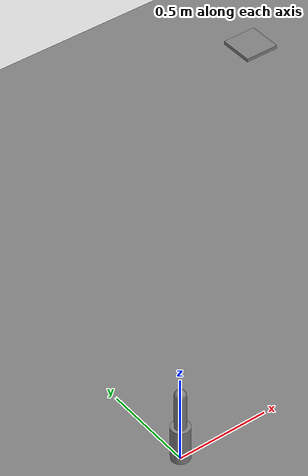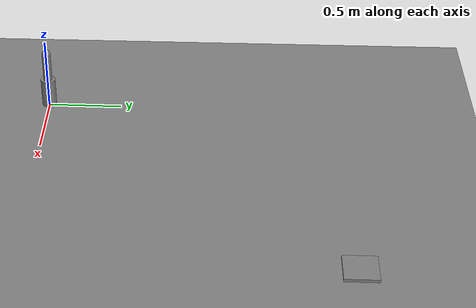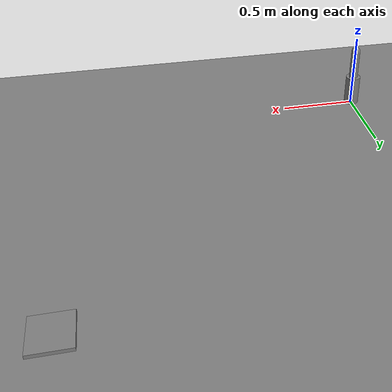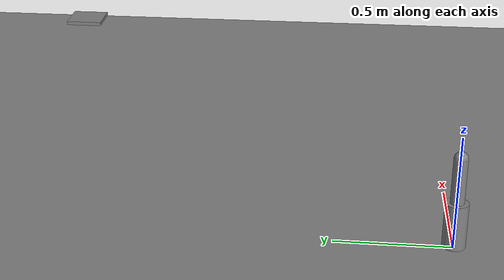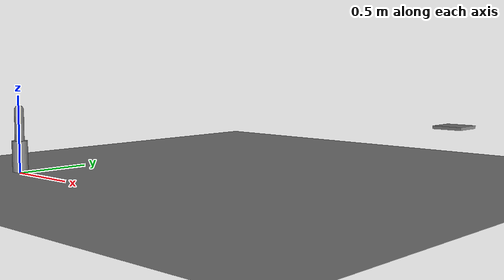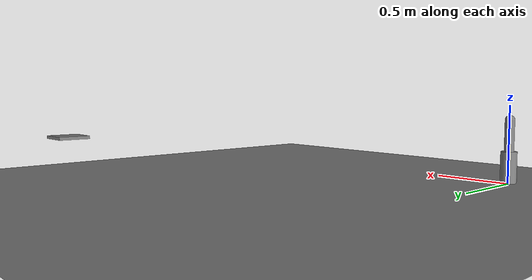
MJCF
<!-- ball_scene.xml with a pad that outranks the ball (priority 200). The ball's
     restitution would not apply to that pad, so Initialize must refuse the scene. -->
<mujoco model="ball_scene_high_priority_test">
  <compiler angle="radian"/>
  <option timestep="0.002" integrator="implicitfast" cone="elliptic" solver="Newton" iterations="20"/>

  <worldbody>
    <geom name="floor" type="plane" size="5 5 0.1" pos="0 0 0"/>
    <geom name="pad" type="box" size="0.1 0.1 0.01" pos="2 2 0.29" contype="1" conaffinity="2"
          solref="0.02 1" priority="200" friction="1.2 0.005 0.0001"/>

    <body name="link1" pos="0 0 0.11">
      <joint name="j1" type="hinge" axis="0 0 1" range="-3.14 3.14"/>
      <inertial pos="0 0 0.1" mass="1.0" diaginertia="0.01 0.01 0.01"/>
      <geom type="cylinder" size="0.05 0.1"/>
      <body name="link2" pos="0 0 0.2">
        <joint name="j2" type="hinge" axis="0 1 0" range="-1.57 1.57"/>
        <inertial pos="0 0 0.1" mass="0.5" diaginertia="0.005 0.005 0.005"/>
        <geom type="capsule" size="0.03 0.1"/>
      </body>
    </body>
  </worldbody>

  <actuator>
    <position name="m1" joint="j1" kp="100" ctrlrange="-3.14 3.14"/>
    <position name="m2" joint="j2" kp="100" ctrlrange="-1.57 1.57"/>
  </actuator>
</mujoco>
